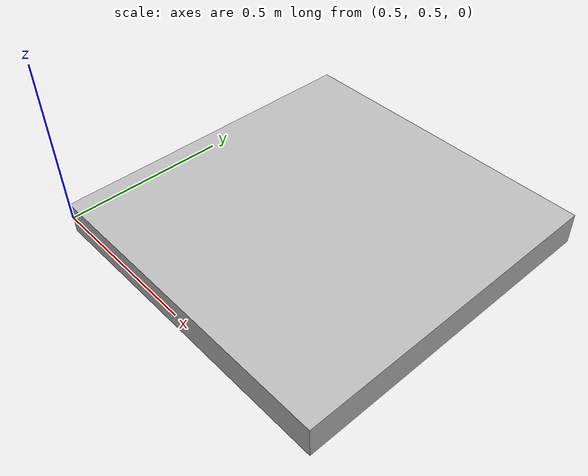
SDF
<?xml version='1.0' encoding='utf-8'?>
<sdf version="1.6">
  <model name="stop_sign">
    <static>true</static>
    <link name="body">
      <pose>1 1 0 1.5708 0 0</pose>
      <visual name="visual">
        <geometry>
          <mesh>
            <scale>0.25 0.25 0.25</scale>
            <uri>meshes/stop_sign.obj</uri>
          </mesh>
        </geometry>
      </visual>
      <collision name="collision">
        <geometry>
          <mesh>
            <scale>0.25 0.25 0.25</scale>
            <uri>meshes/stop_sign.obj</uri>
          </mesh>
        </geometry>
      </collision>
    </link>
  </model>
</sdf>
